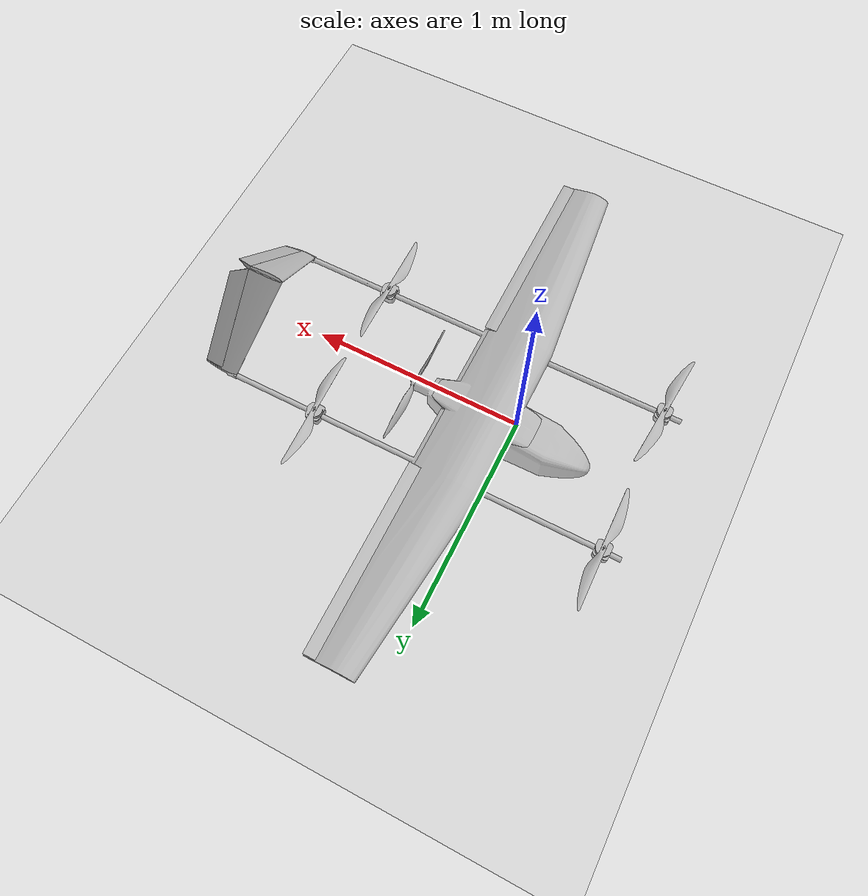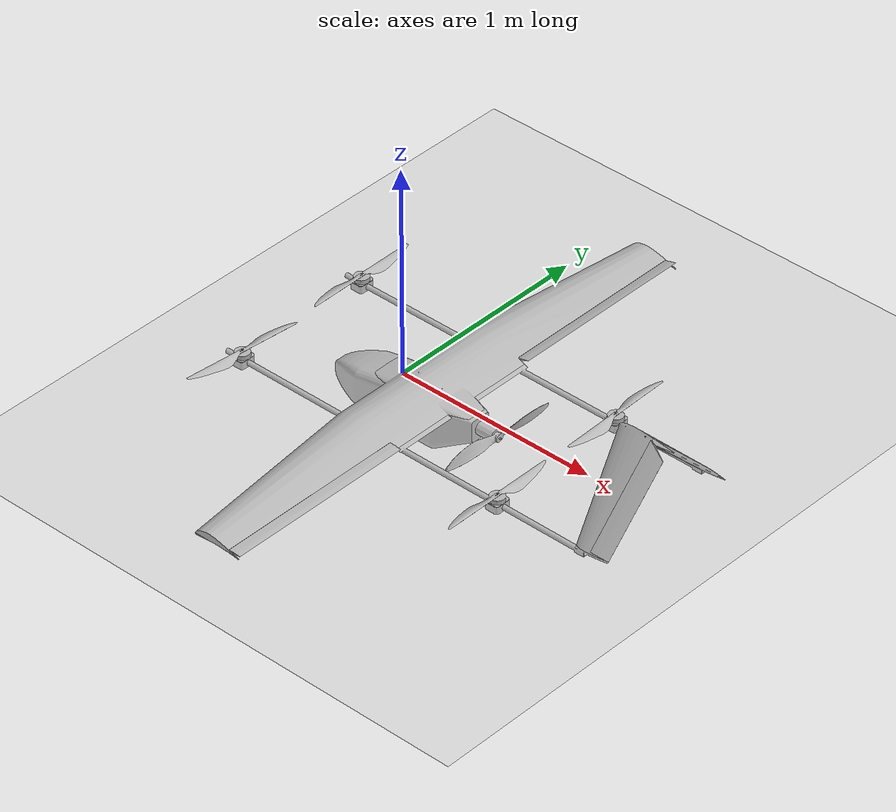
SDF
<?xml version="1.0" ?>
<sdf version="1.6">
  <world name="default">
    <gui>
      <camera name="user_camera">
        <pose>-5 0 1 0 0.2 0</pose>
      </camera>
    </gui>
    <physics type="ode">
      <ode>
        <solver>
          <type>quick</type>
          <iters>100</iters>
          <sor>1.0</sor>
        </solver>
        <constraints>
          <cfm>0.0</cfm>
          <erp>0.2</erp>
          <contact_max_correcting_vel>0.1</contact_max_correcting_vel>
          <contact_surface_layer>0.0</contact_surface_layer>
        </constraints>
      </ode>
      <real_time_update_rate>-1</real_time_update_rate>
    </physics>
    <gravity>0 0 -9.8</gravity>
    <include>
      <uri>model://sun</uri>
    </include>

    <model name="ground_plane">
      <static>true</static>
      <link name="link">
        <collision name="collision">
          <geometry>
            <plane>
              <normal>0 0 1</normal>
              <size>5000 5000</size>
            </plane>
          </geometry>
          <surface>
            <friction>
              <ode>
                <mu>100</mu>
                <mu2>50</mu2>
              </ode>
            </friction>
          </surface>
        </collision>
        <visual name="runway">
          <pose>000 0 0.005 0 0 0</pose>
          <cast_shadows>false</cast_shadows>
          <geometry>
            <plane>
              <normal>0 0 1</normal>
              <size>1829 45</size>
            </plane>
          </geometry>
          <material>
            <script>
              <uri>file://media/materials/scripts/gazebo.material</uri>
              <name>Gazebo/Runway</name>
            </script>
          </material>
        </visual>

      </link>
    </model>

    <model name="gauthali_vtol">
      <include>
        <uri>model://gauthali_vtol</uri>
      </include>
    </model>
  </world>
</sdf>

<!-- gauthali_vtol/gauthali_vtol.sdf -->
<sdf version='1.6'>
  <model name='gauthali_vtol'>
    <link name='base_link'>
      <pose frame=''>0 0 0 0 -0 0</pose>
      <inertial>
        <pose frame=''>0.11856 -0.056508 8e-06 0 -0 0</pose>
        <mass>9.2977</mass>
        <inertia>
          <ixx>0.32593</ixx>
          <ixy>-0.013555</ixy>
          <ixz>-7.8276e-06</ixz>
          <iyy>0.52764</iyy>
          <iyz>-1.5075e-06</iyz>
          <izz>0.25239</izz>
        </inertia>
      </inertial>
      <collision name='base_link_collision'>
        <pose frame=''>0 0 0 0 -0 0</pose>
        <geometry>
          <mesh>
            <scale>1 1 1</scale>
            <uri>model://gauthali_vtol/meshes/base_link.dae</uri>
          </mesh>
        </geometry>
      </collision>
      <visual name='base_link_visual'>
        <pose frame=''>0 0 0 0 -0 0</pose>
        <geometry>
          <mesh>
            <scale>1 1 1</scale>
            <uri>model://gauthali_vtol/meshes/base_link.dae</uri>
          </mesh>
        </geometry>
      </visual>
    </link>
    <link name='gauthali_vtol/imu_link'>
      <pose>0 0 0 0 0 0</pose>
      <inertial>
        <pose>0 0 0 0 0 0</pose>
        <mass>0.015</mass>
        <inertia>
          <ixx>1e-05</ixx>
          <ixy>0</ixy>
          <ixz>0</ixz>
          <iyy>1e-05</iyy>
          <iyz>0</iyz>
          <izz>1e-05</izz>
        </inertia>
      </inertial>
      <sensor name="imu_sensor" type="imu">
        <pose>0 0 0 3.141593 0 0</pose>
        <always_on>1</always_on>
        <update_rate>1000.0</update_rate>
      </sensor>
    </link>
    <joint name='gauthali_vtol/imu_joint' type='revolute'>
      <child>gauthali_vtol/imu_link</child>
      <parent>base_link</parent>
      <axis>
        <xyz>1 0 0</xyz>
        <limit>
          <lower>0</lower>
          <upper>0</upper>
          <effort>0</effort>
          <velocity>0</velocity>
        </limit>
        <dynamics>
          <spring_reference>0</spring_reference>
          <spring_stiffness>0</spring_stiffness>
        </dynamics>
        <use_parent_model_frame>1</use_parent_model_frame>
      </axis>
    </joint>
    <link name='left_aileron'>
      <pose frame=''>0.28599 -0.38 0.006356 1.5708 -0.29369 0</pose>
      <inertial>
        <pose frame=''>0.017378 -0.008312 0.45424 0 -0 0</pose>
        <mass>0.0090385</mass>
        <inertia>
          <ixx>0.00063296</ixx>
          <ixy>3.822e-07</ixy>
          <ixz>-1.7169e-07</ixz>
          <iyy>0.00063438</iyy>
          <iyz>4.2676e-07</iyz>
          <izz>1.7477e-06</izz>
        </inertia>
      </inertial>
      <collision name='left_aileron_collision'>
        <pose frame=''>0 0 0 0 -0 0</pose>
        <geometry>
          <mesh>
            <scale>1 1 1</scale>
            <uri>model://gauthali_vtol/meshes/left_aileron.dae</uri>
          </mesh>
        </geometry>
      </collision>
      <visual name='left_aileron_visual'>
        <pose frame=''>0 0 0 0 -0 0</pose>
        <geometry>
          <mesh>
            <scale>1 1 1</scale>
            <uri>model://gauthali_vtol/meshes/left_aileron.dae</uri>
          </mesh>
        </geometry>
      </visual>
    </link>
    <joint name='left_aileron_joint' type='revolute'>
      <child>left_aileron</child>
      <parent>base_link</parent>
      <axis>
        <xyz>1e-06 -1 -4e-06</xyz>
        <limit>
          <lower>-0.53</lower>
          <upper>0.53</upper>
          <effort>-1</effort>
          <velocity>-1</velocity>
        </limit>
        <dynamics>
          <spring_reference>0</spring_reference>
          <spring_stiffness>0</spring_stiffness>
        </dynamics>
        <use_parent_model_frame>1</use_parent_model_frame>
      </axis>
    </joint>
    <link name='left_ruddervator'>
      <pose frame=''>1.3278 -0.17783 0.17783 2.3562 -0 0</pose>
      <inertial>
        <pose frame=''>0.029088 -0.007151 0.008477 0 -0 0</pose>
        <mass>0.011825</mass>
        <inertia>
          <ixx>0.0002244</ixx>
          <ixy>3.7585e-10</ixy>
          <ixz>-1.8506e-06</ixz>
          <iyy>0.00022971</iyy>
          <iyz>-5.9334e-09</iyz>
          <izz>5.7467e-06</izz>
        </inertia>
      </inertial>
      <collision name='left_ruddervator_collision'>
        <pose frame=''>0 0 0 0 -0 0</pose>
        <geometry>
          <mesh>
            <scale>1 1 1</scale>
            <uri>model://gauthali_vtol/meshes/left_ruddervator.dae</uri>
          </mesh>
        </geometry>
      </collision>
      <visual name='left_ruddervator_visual'>
        <pose frame=''>0 0 0 0 -0 0</pose>
        <geometry>
          <mesh>
            <scale>1 1 1</scale>
            <uri>model://gauthali_vtol/meshes/left_ruddervator.dae</uri>
          </mesh>
        </geometry>
      </visual>
    </link>
    <joint name='left_ruddervator_joint' type='revolute'>
      <child>left_ruddervator</child>
      <parent>base_link</parent>
      <axis>
        <xyz>0 -0.707103 -0.707111</xyz>
        <limit>
          <lower>-0.53</lower>
          <upper>0.53</upper>
          <effort>-1</effort>
          <velocity>-1</velocity>
        </limit>
        <dynamics>
          <spring_reference>0</spring_reference>
          <spring_stiffness>0</spring_stiffness>
        </dynamics>
        <use_parent_model_frame>1</use_parent_model_frame>
      </axis>
    </joint>
    <link name='right_aileron'>
      <pose frame=''>0.28599 0.38 0.006356 1.5708 -0.59602 0</pose>
      <inertial>
        <pose frame=''>0.017379 -0.008312 -0.45424 0 -0 0</pose>
        <mass>0.0090385</mass>
        <inertia>
          <ixx>0.00063296</ixx>
          <ixy>3.822e-07</ixy>
          <ixz>1.716e-07</ixz>
          <iyy>0.00063439</iyy>
          <iyz>-4.2675e-07</iyz>
          <izz>1.7477e-06</izz>
        </inertia>
      </inertial>
      <collision name='right_aileron_collision'>
        <pose frame=''>0 0 0 0 -0 0</pose>
        <geometry>
          <mesh>
            <scale>1 1 1</scale>
            <uri>model://gauthali_vtol/meshes/right_aileron.dae</uri>
          </mesh>
        </geometry>
      </collision>
      <visual name='right_aileron_visual'>
        <pose frame=''>0 0 0 0 -0 0</pose>
        <geometry>
          <mesh>
            <scale>1 1 1</scale>
            <uri>model://gauthali_vtol/meshes/right_aileron.dae</uri>
          </mesh>
        </geometry>
      </visual>
    </link>
    <joint name='right_aileron_joint' type='revolute'>
      <child>right_aileron</child>
      <parent>base_link</parent>
      <axis>
        <xyz>2e-06 -1 -3e-06</xyz>
        <limit>
          <lower>-0.53</lower>
          <upper>0.53</upper>
          <effort>1</effort>
          <velocity>1</velocity>
        </limit>
        <dynamics>
          <spring_reference>0</spring_reference>
          <spring_stiffness>0</spring_stiffness>
        </dynamics>
        <use_parent_model_frame>1</use_parent_model_frame>
      </axis>
    </joint>
    <link name='right_ruddervator'>
      <pose frame=''>1.3278 0.17783 0.17783 2.3562 -0 0</pose>
      <inertial>
        <pose frame=''>0.029088 -0.008476 0.007151 0 -0 0</pose>
        <mass>0.011825</mass>
        <inertia>
          <ixx>0.00022439</ixx>
          <ixy>1.8506e-06</ixy>
          <ixz>-3.6772e-10</ixz>
          <iyy>5.7467e-06</iyy>
          <iyz>-5.9487e-09</iyz>
          <izz>0.00022971</izz>
        </inertia>
      </inertial>
      <collision name='right_ruddervator_collision'>
        <pose frame=''>0 0 0 0 -0 0</pose>
        <geometry>
          <mesh>
            <scale>1 1 1</scale>
            <uri>model://gauthali_vtol/meshes/right_ruddervator.dae</uri>
          </mesh>
        </geometry>
      </collision>
      <visual name='right_ruddervator_visual'>
        <pose frame=''>0 0 0 0 -0 0</pose>
        <geometry>
          <mesh>
            <scale>1 1 1</scale>
            <uri>model://gauthali_vtol/meshes/right_ruddervator.dae</uri>
          </mesh>
        </geometry>
      </visual>
    </link>
    <joint name='right_ruddervator_joint' type='revolute'>
      <child>right_ruddervator</child>
      <parent>base_link</parent>
      <axis>
        <xyz>0 -0.707111 0.707103</xyz>
        <limit>
          <lower>-0.53</lower>
          <upper>0.53</upper>
          <effort>-1</effort>
          <velocity>-1</velocity>
        </limit>
        <dynamics>
          <spring_reference>0</spring_reference>
          <spring_stiffness>0</spring_stiffness>
        </dynamics>
        <use_parent_model_frame>1</use_parent_model_frame>
      </axis>
    </joint>
    <link name='rotor_0'>
      <pose frame=''>-0.564 0.35355 0.006413 1.5708 -0 0.011221</pose>
      <inertial>
        <pose frame=''>-0 0.015147 0 0 -0 0</pose>
        <mass>0.067297</mass>
        <inertia>
          <ixx>0.0014426</ixx>
          <ixy>9.0561e-13</ixy>
          <ixz>6.2334e-05</ixz>
          <iyy>0.0014525</iyy>
          <iyz>-9.2603e-13</iyz>
          <izz>1.1315e-05</izz>
        </inertia>
      </inertial>
      <collision name='rotor_0_collision'>
        <pose frame=''>0 0 0 0 -0 0</pose>
        <geometry>
          <mesh>
            <scale>1 1 1</scale>
            <uri>model://gauthali_vtol/meshes/rotor_0.dae</uri>
          </mesh>
        </geometry>
      </collision>
      <visual name='rotor_0_visual'>
        <pose frame=''>0 0 0 0 -0 0</pose>
        <geometry>
          <mesh>
            <scale>1 1 1</scale>
            <uri>model://gauthali_vtol/meshes/rotor_0.dae</uri>
          </mesh>
        </geometry>
      </visual>
    </link>
    <joint name='rotor_0_joint' type='revolute'>
      <child>rotor_0</child>
      <parent>base_link</parent>
      <axis>
        <xyz>0 -4e-06 1</xyz>
        <limit>
          <lower>-1e+16</lower>
          <upper>1e+16</upper>
        </limit>
        <dynamics>
          <spring_reference>0</spring_reference>
          <spring_stiffness>0</spring_stiffness>
        </dynamics>
        <use_parent_model_frame>1</use_parent_model_frame>
      </axis>
    </joint>
    <link name='rotor_1'>
      <pose frame=''>0.836 -0.35355 0.006413 1.5708 -0 -3.1388</pose>
      <inertial>
        <pose frame=''>-0 0.015147 0 0 -0 0</pose>
        <mass>0.067297</mass>
        <inertia>
          <ixx>0.0014426</ixx>
          <ixy>9.1437e-13</ixy>
          <ixz>6.2334e-05</ixz>
          <iyy>0.0014525</iyy>
          <iyz>-9.5513e-13</iyz>
          <izz>1.1315e-05</izz>
        </inertia>
      </inertial>
      <collision name='rotor_1_collision'>
        <pose frame=''>0 0 0 0 -0 0</pose>
        <geometry>
          <mesh>
            <scale>1 1 1</scale>
            <uri>model://gauthali_vtol/meshes/rotor_1.dae</uri>
          </mesh>
        </geometry>
      </collision>
      <visual name='rotor_1_visual'>
        <pose frame=''>0 0 0 0 -0 0</pose>
        <geometry>
          <mesh>
            <scale>1 1 1</scale>
            <uri>model://gauthali_vtol/meshes/rotor_1.dae</uri>
          </mesh>
        </geometry>
      </visual>
    </link>
    <joint name='rotor_1_joint' type='revolute'>
      <child>rotor_1</child>
      <parent>base_link</parent>
      <axis>
        <xyz>-0 4e-06 1</xyz>
        <limit>
          <lower>-1e+16</lower>
          <upper>1e+16</upper>
        </limit>
        <dynamics>
          <spring_reference>0</spring_reference>
          <spring_stiffness>0</spring_stiffness>
        </dynamics>
        <use_parent_model_frame>1</use_parent_model_frame>
      </axis>
    </joint>
    <link name='rotor_2'>
      <pose frame=''>-0.564 -0.35355 0.006413 1.5708 -0 -0.091662</pose>
      <inertial>
        <pose frame=''>0 0.015147 -0 0 -0 0</pose>
        <mass>0.0672986</mass>
        <inertia>
          <ixx>0.00144267</ixx>
          <ixy>-2.29424e-13</ixy>
          <ixz>-6.23319e-05</ixz>
          <iyy>0.0014526</iyy>
          <iyz>9.36363e-12</iyz>
          <izz>1.13152e-05</izz>
        </inertia>
      </inertial>
      <collision name='rotor_2_collision'>
        <pose frame=''>0 0 0 0 -0 0</pose>
        <geometry>
          <mesh>
            <scale>1 1 1</scale>
            <uri>model://gauthali_vtol/meshes/rotor_2.dae</uri>
          </mesh>
        </geometry>
      </collision>
      <visual name='rotor_2_visual'>
        <pose frame=''>0 0 0 0 -0 0</pose>
        <geometry>
          <mesh>
            <scale>1 1 1</scale>
            <uri>model://gauthali_vtol/meshes/rotor_2.dae</uri>
          </mesh>
        </geometry>
      </visual>
    </link>
    <joint name='rotor_2_joint' type='revolute'>
      <child>rotor_2</child>
      <parent>base_link</parent>
      <axis>
        <xyz>-0 -4e-06 1</xyz>
        <limit>
          <lower>-1e+16</lower>
          <upper>1e+16</upper>
        </limit>
        <dynamics>
          <spring_reference>0</spring_reference>
          <spring_stiffness>0</spring_stiffness>
        </dynamics>
        <use_parent_model_frame>1</use_parent_model_frame>
      </axis>
    </joint>
    <link name='rotor_3'>
      <pose frame=''>0.836 0.35355 0.006413 1.5708 -0 -3.1164</pose>
      <inertial>
        <pose frame=''>0 0.015147 0 0 -0 0</pose>
        <mass>0.067298</mass>
        <inertia>
          <ixx>0.0014426</ixx>
          <ixy>3.0472e-13</ixy>
          <ixz>-6.2331e-05</ixz>
          <iyy>0.0014526</iyy>
          <iyz>2.8078e-13</iyz>
          <izz>1.1315e-05</izz>
        </inertia>
      </inertial>
      <collision name='rotor_3_collision'>
        <pose frame=''>0 0 0 0 -0 0</pose>
        <geometry>
          <mesh>
            <scale>1 1 1</scale>
            <uri>model://gauthali_vtol/meshes/rotor_3.dae</uri>
          </mesh>
        </geometry>
      </collision>
      <visual name='rotor_3_visual'>
        <pose frame=''>0 0 0 0 -0 0</pose>
        <geometry>
          <mesh>
            <scale>1 1 1</scale>
            <uri>model://gauthali_vtol/meshes/rotor_3.dae</uri>
          </mesh>
        </geometry>
      </visual>
    </link>
    <joint name='rotor_3_joint' type='revolute'>
      <child>rotor_3</child>
      <parent>base_link</parent>
      <axis>
        <xyz>-0 4e-06 1</xyz>
        <limit>
          <lower>-1e+16</lower>
          <upper>1e+16</upper>
        </limit>
        <dynamics>
          <spring_reference>0</spring_reference>
          <spring_stiffness>0</spring_stiffness>
        </dynamics>
        <use_parent_model_frame>1</use_parent_model_frame>
      </axis>
    </joint>
    <link name='rotor_pusher'>
      <pose frame=''>0.50018 0 -0.058605 -0 -1.2758 1.5708</pose>
      <inertial>
        <pose frame=''>0 -0.0128 -0 0 -0 0</pose>
        <mass>0.18697</mass>
        <inertia>
          <ixx>0.004287</ixx>
          <ixy>-2.3985e-11</ixy>
          <ixz>0.0009704</ixz>
          <iyy>0.0045337</iyy>
          <iyz>-4.8833e-11</iyz>
          <izz>0.00025725</izz>
        </inertia>
      </inertial>
      <collision name='rotor_pusher_collision'>
        <pose frame=''>0 0 0 0 -0 0</pose>
        <geometry>
          <mesh>
            <scale>1 1 1</scale>
            <uri>model://gauthali_vtol/meshes/rotor_pusher.dae</uri>
          </mesh>
        </geometry>
      </collision>
      <visual name='rotor_pusher_visual'>
        <pose frame=''>0 0 0 0 -0 0</pose>
        <geometry>
          <mesh>
            <scale>1 1 1</scale>
            <uri>model://gauthali_vtol/meshes/rotor_pusher.dae</uri>
          </mesh>
        </geometry>
      </visual>
    </link>
    <joint name='rotor_pusher_joint' type='revolute'>
      <child>rotor_pusher</child>
      <parent>base_link</parent>
      <axis>
        <xyz>-1 -4e-06 -0</xyz>
        <limit>
          <lower>-1e+16</lower>
          <upper>1e+16</upper>
        </limit>
        <dynamics>
          <spring_reference>0</spring_reference>
          <spring_stiffness>0</spring_stiffness>
        </dynamics>
        <use_parent_model_frame>1</use_parent_model_frame>
      </axis>
    </joint>
    <plugin name="left_wing" filename="libLiftDragPlugin.so">
      <a0>0.156575426451136</a0>
      <cla>5.15662015617741</cla>
      <cda>0.401070456591576</cda>
      <cma>-1.2</cma>
      <alpha_stall>0.357288290430484</alpha_stall>
      <cla_stall>-3.85</cla_stall>
      <cda_stall>-0.9233984055</cda_stall>
      <cma_stall>0</cma_stall>
      <cp>0.166 -0.55 0</cp>
      <area>0.395</area>
      <air_density>1.2041</air_density>
      <forward>-1 0 0</forward>
      <upward>0 0 1</upward>
      <link_name>base_link</link_name>
      <control_joint_name>
        left_aileron_joint
      </control_joint_name>
      <control_joint_rad_to_cl>-0.5</control_joint_rad_to_cl>
    </plugin>
    <plugin name="right_wing" filename="libLiftDragPlugin.so">
      <a0>0.156575426451136</a0>
      <cla>5.15662015617741</cla>
      <cda>0.401070456591576</cda>
      <cma>-1.2</cma>
      <alpha_stall>0.357288290430484</alpha_stall>
      <cla_stall>-3.85</cla_stall>
      <cda_stall>-0.9233984055</cda_stall>
      <cma_stall>0</cma_stall>
      <cp>0.166 0.55 0</cp>
      <area>0.395</area>
      <air_density>1.2041</air_density>
      <forward>-1 0 0</forward>
      <upward>0 0 1</upward>
      <link_name>base_link</link_name>
      <control_joint_name>
        right_aileron_joint
      </control_joint_name>
      <control_joint_rad_to_cl>-0.5</control_joint_rad_to_cl>
    </plugin>
    <plugin name="left_tail" filename="libLiftDragPlugin.so">
      <a0>0</a0>
      <cla>3.10543124960906</cla>
      <cda>0.269290163711487</cda>
      <cma>-1.2</cma>
      <alpha_stall>0.349065850398866</alpha_stall>
      <cla_stall>-3.85</cla_stall>
      <cda_stall>-0.9233984055</cda_stall>
      <cma_stall>0</cma_stall>
      <cp>1.25 -0.1414 0.2021</cp>
      <area>0.075</area>
      <air_density>1.2041</air_density>
      <forward>-1 0 0</forward>
      <upward>0 -0.707 0.707</upward>
      <link_name>base_link</link_name>
      <control_joint_name>
        left_ruddervator_joint
      </control_joint_name>
      <control_joint_rad_to_cl>-4.0</control_joint_rad_to_cl>
    </plugin>
    <plugin name="right_tail" filename="libLiftDragPlugin.so">
      <a0>0</a0>
      <cla>3.10543124960906</cla>
      <cda>0.269290163711487</cda>
      <cma>-1.2</cma>
      <alpha_stall>0.349065850398866</alpha_stall>
      <cla_stall>-3.85</cla_stall>
      <cda_stall>-0.9233984055</cda_stall>
      <cma_stall>0</cma_stall>
      <cp>1.25 0.1414 0.2021</cp>
      <area>0.075</area>
      <air_density>1.2041</air_density>
      <forward>-1 0 0</forward>
      <upward>0 0.707 0.707</upward>
      <link_name>base_link</link_name>
      <control_joint_name>
        right_ruddervator_joint
      </control_joint_name>
      <control_joint_rad_to_cl>-4.0</control_joint_rad_to_cl>
    </plugin>
    <plugin name="pusher_blade_1" filename="libLiftDragPlugin.so">
      <a0>0.30</a0>
      <alpha_stall>1.4</alpha_stall>
      <cla>4.2500</cla>
      <cda>0.10</cda>
      <cma>0.00</cma>
      <cla_stall>-0.025</cla_stall>
      <cda_stall>0.0</cda_stall>
      <cma_stall>0.0</cma_stall>
      <area>0.01</area>
      <air_density>1.2041</air_density>
      <cp>0 0 0.093</cp>
      <forward>1 0 0</forward>
      <upward>0 1 0</upward>
      <link_name>rotor_pusher</link_name>
    </plugin>
    <plugin name="pusher_blade_2" filename="libLiftDragPlugin.so">
      <a0>0.30</a0>
      <alpha_stall>1.4</alpha_stall>
      <cla>4.2500</cla>
      <cda>0.10</cda>
      <cma>0.00</cma>
      <cla_stall>-0.025</cla_stall>
      <cda_stall>0.0</cda_stall>
      <cma_stall>0.0</cma_stall>
      <area>0.01</area>
      <air_density>1.2041</air_density>
      <cp>0 0 -0.093</cp>
      <forward>-1 0 0</forward>
      <upward>0 1 0</upward>
      <link_name>rotor_pusher</link_name>
    </plugin>
    <plugin name="rotor_1_blade_1" filename="libLiftDragPlugin.so">
      <a0>0.3</a0>
      <alpha_stall>1.4</alpha_stall>
      <cla>4.2500</cla>
      <cda>0.10</cda>
      <cma>0.00</cma>
      <cla_stall>-0.025</cla_stall>
      <cda_stall>0.0</cda_stall>
      <cma_stall>0.0</cma_stall>
      <area>0.01</area>
      <air_density>1.2041</air_density>
      <cp>0 0 -0.093</cp>
      <forward>-1 0 0</forward>
      <upward>0 1 0</upward>
      <link_name>rotor_1</link_name>
    </plugin>
    <plugin name="rotor_1_blade_2" filename="libLiftDragPlugin.so">
      <a0>0.3</a0>
      <alpha_stall>1.4</alpha_stall>
      <cla>4.2500</cla>
      <cda>0.10</cda>
      <cma>0.00</cma>
      <cla_stall>-0.025</cla_stall>
      <cda_stall>0.0</cda_stall>
      <cma_stall>0.0</cma_stall>
      <area>0.01</area>
      <air_density>1.2041</air_density>
      <cp>0 0 0.093</cp>
      <forward>1 0 0</forward>
      <upward>0 1 0</upward>
      <link_name>rotor_1</link_name>
    </plugin>
    <plugin name="rotor_2_blade_1" filename="libLiftDragPlugin.so">
      <a0>0.3</a0>
      <alpha_stall>1.4</alpha_stall>
      <cla>4.2500</cla>
      <cda>0.10</cda>
      <cma>0.00</cma>
      <cla_stall>-0.025</cla_stall>
      <cda_stall>0.0</cda_stall>
      <cma_stall>0.0</cma_stall>
      <area>0.01</area>
      <air_density>1.2041</air_density>
      <cp>0 0 0.093</cp> <!-- check sign -->
      <forward>-1 0 0</forward>
      <upward>0 1 0</upward>
      <link_name>rotor_2</link_name>
    </plugin>
    <plugin name="rotor_2_blade_2" filename="libLiftDragPlugin.so">
      <a0>0.3</a0>
      <alpha_stall>1.4</alpha_stall>
      <cla>4.2500</cla>
      <cda>0.10</cda>
      <cma>0.00</cma>
      <cla_stall>-0.025</cla_stall>
      <cda_stall>0.0</cda_stall>
      <cma_stall>0.0</cma_stall>
      <area>0.01</area>
      <air_density>1.2041</air_density>
      <cp>0 0 -0.093</cp> <!-- check sign -->
      <forward>1 0 0</forward>
      <upward>0 1 0</upward>
      <link_name>rotor_2</link_name>
    </plugin>
    <plugin name="rotor_0_blade_1" filename="libLiftDragPlugin.so">
      <a0>0.3</a0>
      <alpha_stall>1.4</alpha_stall>
      <cla>4.2500</cla>
      <cda>0.10</cda>
      <cma>0.00</cma>
      <cla_stall>-0.025</cla_stall>
      <cda_stall>0.0</cda_stall>
      <cma_stall>0.0</cma_stall>
      <area>0.01</area>
      <air_density>1.2041</air_density>
      <cp>0 0 0.093</cp>
      <forward>1 0 0</forward>
      <upward>0 1 0</upward>
      <link_name>rotor_0</link_name>
    </plugin>
    <plugin name="rotor_0_blade_2" filename="libLiftDragPlugin.so">
      <a0>0.3</a0>
      <alpha_stall>1.4</alpha_stall>
      <cla>4.2500</cla>
      <cda>0.10</cda>
      <cma>0.00</cma>
      <cla_stall>-0.025</cla_stall>
      <cda_stall>0.0</cda_stall>
      <cma_stall>0.0</cma_stall>
      <area>0.01</area>
      <air_density>1.2041</air_density>
      <cp>0 0 -0.093</cp>
      <forward>-1 0 0</forward>
      <upward>0 1 0</upward>
      <link_name>rotor_0</link_name>
    </plugin>
    <plugin name="rotor_3_blade_1" filename="libLiftDragPlugin.so">
      <a0>0.3</a0>
      <alpha_stall>1.4</alpha_stall>
      <cla>4.2500</cla>
      <cda>0.10</cda>
      <cma>0.00</cma>
      <cla_stall>-0.025</cla_stall>
      <cda_stall>0.0</cda_stall>
      <cma_stall>0.0</cma_stall>
      <area>0.01</area>
      <air_density>1.2041</air_density>
      <cp>0 0 -0.093</cp>
      <forward>1 0 0</forward>
      <upward>0 1 0</upward>
      <link_name>rotor_3</link_name>
    </plugin>
    <plugin name="rotor_3_blade_2" filename="libLiftDragPlugin.so">
      <a0>0.3</a0>
      <alpha_stall>1.4</alpha_stall>
      <cla>4.2500</cla>
      <cda>0.10</cda>
      <cma>0.00</cma>
      <cla_stall>-0.025</cla_stall>
      <cda_stall>0.0</cda_stall>
      <cma_stall>0.0</cma_stall>
      <area>0.01</area>
      <air_density>1.2041</air_density>
      <cp>0 0 0.093</cp>
      <forward>-1 0 0</forward>
      <upward>0 1 0</upward>
      <link_name>rotor_3</link_name>
    </plugin>
    <plugin name="arducopter_plugin" filename="libArduPilotPlugin.so">
      <fdm_addr>127.0.0.1</fdm_addr>
      <fdm_port_in>9002</fdm_port_in>
      <fdm_port_out>9003</fdm_port_out>
      <!--
          Require by APM :
          Only change model and gazebo from XYZ to XY-Z coordinates
      -->
      <modelXYZToAirplaneXForwardZDown>0 0 0 3.141593 0 0</modelXYZToAirplaneXForwardZDown>
      <gazeboXYZToNED>0 0 0 3.141593 0 0</gazeboXYZToNED>
      <imuName>gauthali_vtol/imu_link::imu_sensor</imuName>
      <connectionTimeoutMaxCount>5</connectionTimeoutMaxCount>
      <control channel="3">

        <multiplier>1000</multiplier>
        <offset>0.2</offset>
        <type>VELOCITY</type>
        <p_gain>0.5</p_gain>
        <i_gain>0</i_gain>
        <d_gain>0</d_gain>
        <i_max>0</i_max>
        <i_min>0</i_min>
        <cmd_max>2.0</cmd_max>
        <cmd_min>0.0</cmd_min>
        <jointName>rotor_pusher_joint</jointName>
      </control>
      <control channel="0">
        <multiplier>1</multiplier>
        <offset>-0.5</offset>
        <type>POSITION</type>
        <p_gain>10.0</p_gain>
        <i_gain>0</i_gain>
        <d_gain>0</d_gain>
        <i_max>0</i_max>
        <i_min>0</i_min>
        <cmd_max>2.0</cmd_max>
        <cmd_min>-2.0</cmd_min>
        <jointName>left_aileron_joint</jointName>
      </control>
      <control channel="1">
        <multiplier>1</multiplier>
        <offset>-0.5</offset>
        <type>POSITION</type>
        <p_gain>10.0</p_gain>
        <i_gain>0</i_gain>
        <d_gain>0</d_gain>
        <i_max>0</i_max>
        <i_min>0</i_min>
        <cmd_max>2.0</cmd_max>
        <cmd_min>-2.0</cmd_min>
        <jointName>right_aileron_joint</jointName>
      </control>
      <control channel="4">
        <type>VELOCITY</type>
        <offset>0</offset>
        <p_gain>0.20</p_gain>
        <i_gain>0</i_gain>
        <d_gain>0</d_gain>
        <i_max>0</i_max>
        <i_min>0</i_min>
        <cmd_max>2.5</cmd_max>
        <cmd_min>-2.5</cmd_min>
        <jointName>rotor_0_joint</jointName>
        <multiplier>1000</multiplier>
        <controlVelocitySlowdownSim>1</controlVelocitySlowdownSim>
      </control>
      <control channel="5">
        <type>VELOCITY</type>
        <offset>0</offset>
        <p_gain>0.20</p_gain>
        <i_gain>0</i_gain>
        <d_gain>0</d_gain>
        <i_max>0</i_max>
        <i_min>0</i_min>
        <cmd_max>2.5</cmd_max>
        <cmd_min>-2.5</cmd_min>
        <jointName>rotor_1_joint</jointName>
        <multiplier>1000</multiplier>
        <controlVelocitySlowdownSim>1</controlVelocitySlowdownSim>
      </control>
      <control channel="6">
        <type>VELOCITY</type>
        <offset>0</offset>
        <p_gain>0.20</p_gain>
        <i_gain>0</i_gain>
        <d_gain>0</d_gain>
        <i_max>0</i_max>
        <i_min>0</i_min>
        <cmd_max>2.5</cmd_max>
        <cmd_min>-2.5</cmd_min>
        <jointName>rotor_2_joint</jointName>
        <multiplier>-1000</multiplier>
        <controlVelocitySlowdownSim>1</controlVelocitySlowdownSim>
      </control>
      <control channel="7">
        <type>VELOCITY</type>
        <offset>0</offset>
        <p_gain>0.20</p_gain>
        <i_gain>0</i_gain>
        <d_gain>0</d_gain>
        <i_max>0</i_max>
        <i_min>0</i_min>
        <cmd_max>2.5</cmd_max>
        <cmd_min>-2.5</cmd_min>
        <jointName>rotor_3_joint</jointName>
        <multiplier>-1000</multiplier>
        <controlVelocitySlowdownSim>1</controlVelocitySlowdownSim>
      </control>
    </plugin>
  </model>
</sdf>
